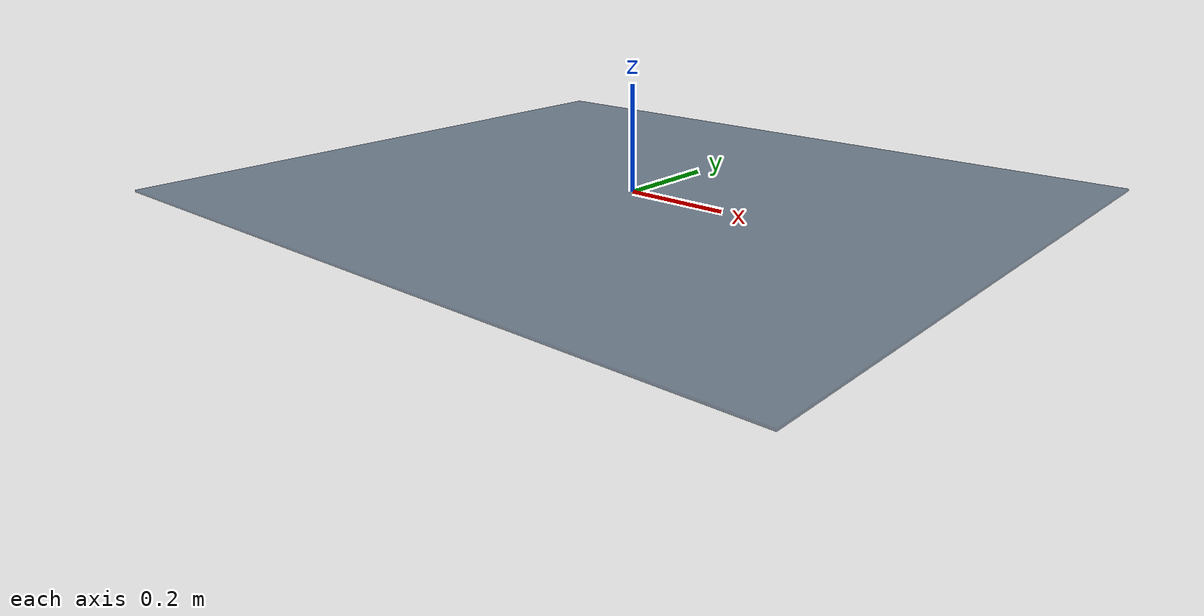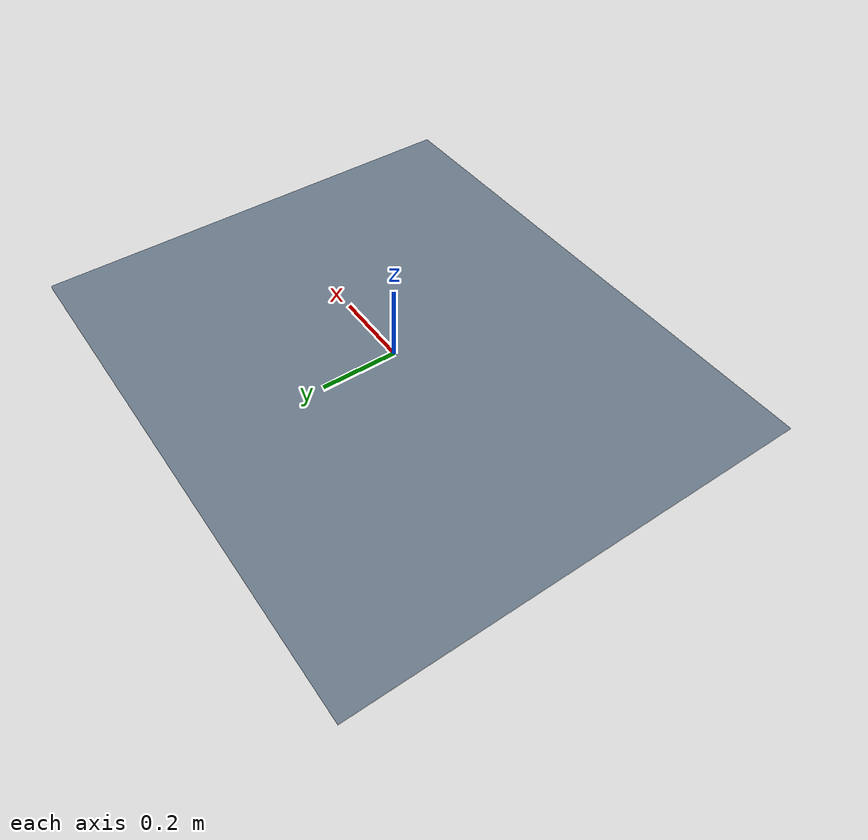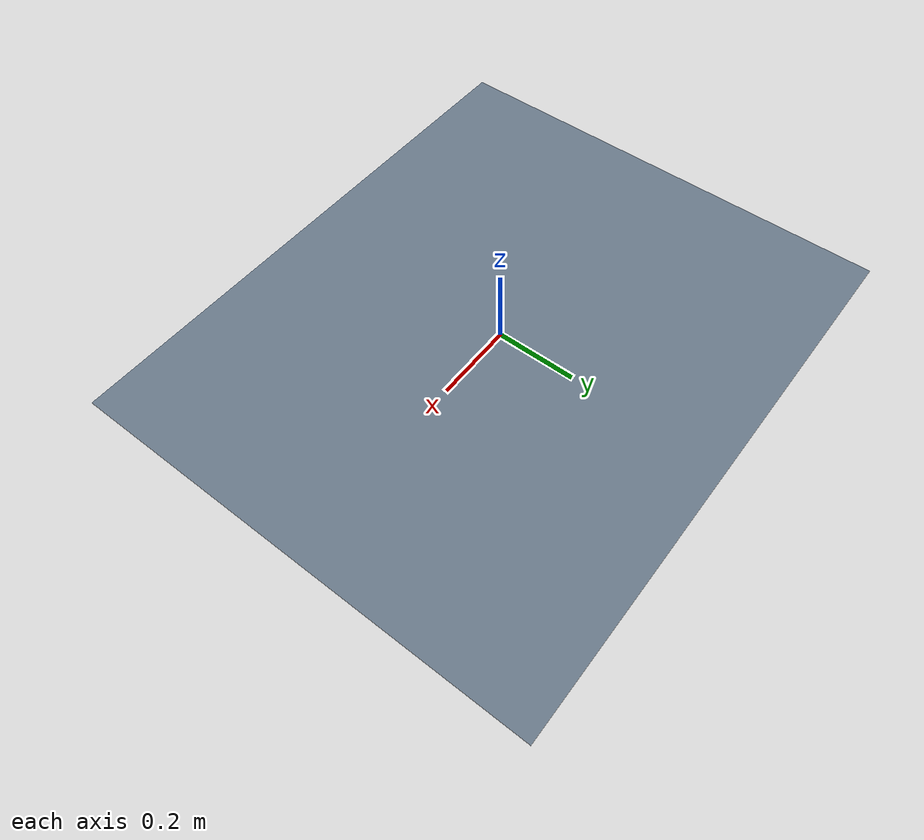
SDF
<?xml version="1.0"?>
<sdf version="1.7">
  <model name="floor_puddle">
    <static>true</static>
    <link name="link">

      <visual name="visual">
        <pose>0 0 0.002 0 0 0</pose>
        <geometry><box><size>1.40 1.20 0.004</size></box></geometry>
        <material>
          <ambient>0.15 0.25 0.35 0.6</ambient>
          <diffuse>0.15 0.25 0.35 0.6</diffuse>
          <specular>0.40 0.40 0.40 1</specular>
        </material>
      </visual>

      <collision name="collision">
        <pose>0 0 0.002 0 0 0</pose>
        <geometry><box><size>1.40 1.20 0.004</size></box></geometry>
        <surface>
          <friction>
            <ode>
              <mu>0.02</mu>
              <mu2>0.02</mu2>
            </ode>
          </friction>
        </surface>
      </collision>

    </link>
  </model>
</sdf>
